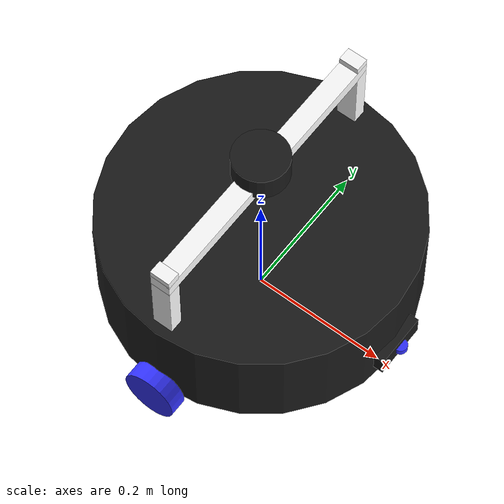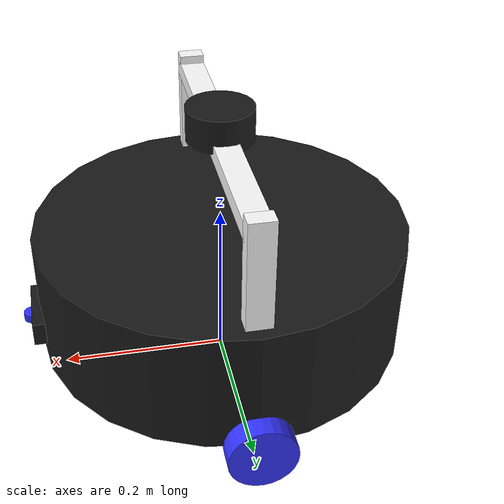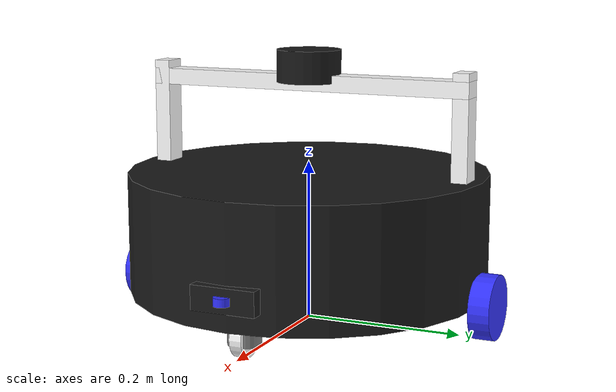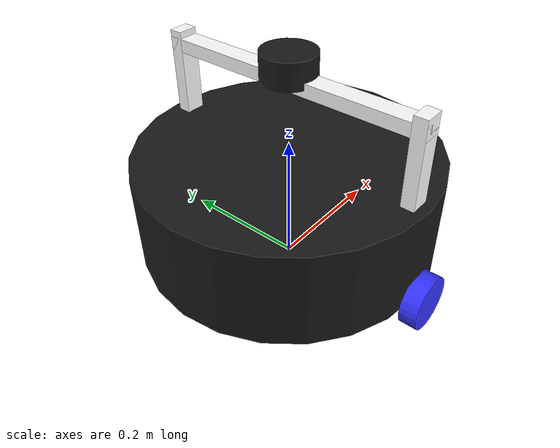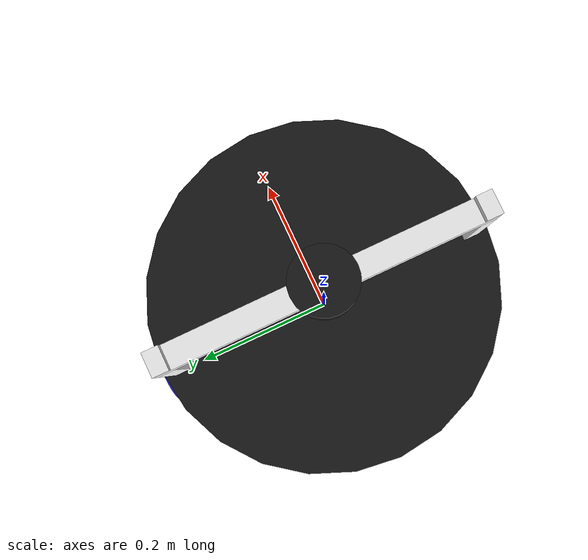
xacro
<?xml version="1.0"?>
<robot xmlns:xacro="http://www.ros.org/wiki/xacro"  name="robot">

    <xacro:arg name="use_ros2_control" default="true"/>
    <xacro:arg name="sim_mode" default="false"/>

    <xacro:include filename="robot_core.xacro" />

    <xacro:if value="$(arg use_ros2_control)">
        <xacro:include filename="ros2_control.xacro" />
    </xacro:if>
    <xacro:unless value="$(arg use_ros2_control)">
        <xacro:include filename="gazebo_control.xacro" />
    </xacro:unless>
    <xacro:include filename="lidar.xacro" />
    <xacro:include filename="camera.xacro" />

    </robot>

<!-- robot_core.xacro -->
<robot xmlns:xacro="http://www.ros.org/wiki/xacro" >

    <xacro:include filename="inertial_macros.xacro"/>

    <xacro:property name="chassis_radius" value="0.225"/>
    <xacro:property name="chassis_height" value="0.15"/> <xacro:property name="chassis_mass" value="2.0"/>

    <xacro:property name="wheel_radius" value="0.04"/> <xacro:property name="wheel_thickness" value="0.026"/>
    <xacro:property name="wheel_mass" value="0.2"/>

    <xacro:property name="wheel_offset_y" value="0.235"/>
    <xacro:property name="caster_wheel_radius" value="0.025"/>
    <xacro:property name="caster_wheel_mass" value="0.05"/>
    <xacro:property name="caster_offset_x" value="0.180"/>

    <material name="black"><color rgba="0.1 0.1 0.1 1"/></material>
    <material name="blue"><color rgba="0.2 0.2 1 1"/></material>
    <material name="white"><color rgba="1 1 1 1" /></material>
    <material name="grey"><color rgba="0.5 0.5 0.5 1"/></material>

    <link name="base_link"></link>

    <joint name="base_footprint_joint" type="fixed">
        <parent link="base_link"/>
        <child link="base_footprint"/>
        <origin xyz="0 0 0" rpy="0 0 0"/>
    </joint>
    <link name="base_footprint"></link>

    <joint name="chassis_joint" type="fixed">
        <parent link="base_link"/>
        <child link="chassis"/>
        <origin xyz="0 0 ${wheel_radius}"/>
    </joint>

    <link name="chassis">
        <visual>
            <origin xyz="0 0 ${chassis_height/2}"/>
            <geometry>
                <cylinder radius="${chassis_radius}" length="${chassis_height}"/>
            </geometry>
            <material name="black"/>
        </visual>
        <collision>
            <origin xyz="0 0 ${chassis_height/2}"/>
            <geometry>
                <cylinder radius="${chassis_radius}" length="${chassis_height}"/>
            </geometry>
        </collision>
        <xacro:inertial_cylinder mass="${chassis_mass}" length="${chassis_height}" radius="${chassis_radius}">
            <origin xyz="0 0 ${chassis_height/2}" rpy="0 0 0"/>
        </xacro:inertial_cylinder>
    </link>

    <gazebo reference="chassis">
        <material>Gazebo/Black</material>
    </gazebo>

    <joint name="left_wheel_joint" type="continuous">
        <parent link="base_link"/>
        <child link="left_wheel"/>
        <origin xyz="0 ${wheel_offset_y} ${wheel_radius}" rpy="-${pi/2} 0 0" />
        <axis xyz="0 0 1"/>
    </joint>

    <link name="left_wheel">
        <visual>
            <geometry><cylinder radius="${wheel_radius}" length="${wheel_thickness}"/></geometry>
            <material name="blue"/>
        </visual>
        <collision>
            <geometry><sphere radius="${wheel_radius}"/></geometry>
        </collision>
        <xacro:inertial_cylinder mass="${wheel_mass}" length="${wheel_thickness}" radius="${wheel_radius}">
            <origin xyz="0 0 0" rpy="0 0 0"/>
        </xacro:inertial_cylinder>
    </link>

    <gazebo reference="left_wheel">
        <material>Gazebo/Blue</material>
    </gazebo>

    <joint name="right_wheel_joint" type="continuous">
        <parent link="base_link"/>
        <child link="right_wheel"/>
        <origin xyz="0 ${-wheel_offset_y} ${wheel_radius}" rpy="${pi/2} 0 0" />
        <axis xyz="0 0 -1"/>
    </joint>

    <link name="right_wheel">
        <visual>
            <geometry><cylinder radius="${wheel_radius}" length="${wheel_thickness}"/></geometry>
            <material name="blue"/>
        </visual>
        <collision>
            <geometry><sphere radius="${wheel_radius}"/></geometry>
        </collision>
        <xacro:inertial_cylinder mass="${wheel_mass}" length="${wheel_thickness}" radius="${wheel_radius}">
            <origin xyz="0 0 0" rpy="0 0 0"/>
        </xacro:inertial_cylinder>
    </link>

    <gazebo reference="right_wheel">
        <material>Gazebo/Blue</material>
    </gazebo>

    <joint name="front_caster_wheel_joint" type="fixed">
        <parent link="chassis"/>
        <child link="front_caster_wheel"/>
        <origin xyz="${caster_offset_x} 0 ${caster_wheel_radius - wheel_radius}"/>
    </joint>

    <link name="front_caster_wheel">
        <visual>
            <origin xyz="0 0 0.01" rpy="0 0 0"/>
            <geometry>
                <cylinder radius="0.02" length="0.04"/>
            </geometry>
            <material name="grey"/>
        </visual>
        <visual>
            <origin xyz="0 0 0" rpy="${pi/2} 0 0"/>
            <geometry>
                <cylinder radius="${caster_wheel_radius}" length="0.015"/>
            </geometry>
            <material name="white"/>
        </visual>
        <collision>
            <geometry><sphere radius="${caster_wheel_radius}"/></geometry>
        </collision>
        <xacro:inertial_sphere mass="${caster_wheel_mass}" radius="${caster_wheel_radius}">
            <origin xyz="0 0 0" rpy="0 0 0"/>
        </xacro:inertial_sphere>
    </link>

    <joint name="rear_caster_wheel_joint" type="fixed">
        <parent link="chassis"/>
        <child link="rear_caster_wheel"/>
        <origin xyz="${-caster_offset_x} 0 ${caster_wheel_radius - wheel_radius}"/>
    </joint>

    <link name="rear_caster_wheel">
        <visual>
            <origin xyz="0 0 0.01" rpy="0 0 0"/>
            <geometry>
                <cylinder radius="0.02" length="0.04"/>
            </geometry>
            <material name="grey"/>
        </visual>
        <visual>
            <origin xyz="0 0 0" rpy="${pi/2} 0 0"/>
            <geometry>
                <cylinder radius="${caster_wheel_radius}" length="0.015"/>
            </geometry>
            <material name="white"/>
        </visual>
        <collision>
            <geometry><sphere radius="${caster_wheel_radius}"/></geometry>
        </collision>
        <xacro:inertial_sphere mass="${caster_wheel_mass}" radius="${caster_wheel_radius}">
            <origin xyz="0 0 0" rpy="0 0 0"/>
        </xacro:inertial_sphere>
    </link>

    <gazebo reference="front_caster_wheel">
        <material>Gazebo/White</material>
        <mu1 value="0.001"/><mu2 value="0.001"/>
    </gazebo>
    <gazebo reference="rear_caster_wheel">
        <material>Gazebo/White</material>
        <mu1 value="0.001"/><mu2 value="0.001"/>
    </gazebo>

</robot>

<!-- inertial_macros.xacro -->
<robot xmlns:xacro="http://www.ros.org/wiki/xacro">

  <!-- Inertial macros                                            -->

  <!-- ================== SPHERE ================== -->
  <xacro:macro name="inertial_sphere" params="mass radius *origin">
    <inertial>
      <xacro:insert_block name="origin"/>
      <mass value="${mass}"/>
      <inertia
        ixx="${(2.0/5.0) * mass * radius * radius}"
        ixy="0.0"
        ixz="0.0"
        iyy="${(2.0/5.0) * mass * radius * radius}"
        iyz="0.0"
        izz="${(2.0/5.0) * mass * radius * radius}"/>
    </inertial>
  </xacro:macro>

  <!-- ================== BOX ================== -->
  <xacro:macro name="inertial_box" params="mass x y z *origin">
    <inertial>
      <xacro:insert_block name="origin"/>
      <mass value="${mass}"/>
      <inertia
        ixx="${(1.0/12.0) * mass * (y*y + z*z)}"
        ixy="0.0"
        ixz="0.0"
        iyy="${(1.0/12.0) * mass * (x*x + z*z)}"
        iyz="0.0"
        izz="${(1.0/12.0) * mass * (x*x + y*y)}"/>
    </inertial>
  </xacro:macro>

  <!-- ================== CYLINDER ================== -->
  <xacro:macro name="inertial_cylinder" params="mass length radius *origin">
    <inertial>
      <xacro:insert_block name="origin"/>
      <mass value="${mass}"/>
      <inertia
        ixx="${(1.0/12.0) * mass * (3*radius*radius + length*length)}"
        ixy="0.0"
        ixz="0.0"
        iyy="${(1.0/12.0) * mass * (3*radius*radius + length*length)}"
        iyz="0.0"
        izz="${(1.0/2.0) * mass * radius * radius}"/>
    </inertial>
  </xacro:macro>

</robot>

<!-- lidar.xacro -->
<robot xmlns:xacro="http://www.ros.org/wiki/xacro" >

    <joint name="laser_joint" type="fixed">
        <parent link="chassis"/>
        <child link="laser_frame"/>
        <origin xyz="0 0 0.28" rpy="0 0 0"/>
    </joint>

    <link name="laser_frame">
        <visual>
            <geometry>
                <cylinder radius="0.04" length="0.04"/>
            </geometry>
            <material name="black"/>
        </visual>
        <collision>
            <geometry>
                <cylinder radius="0.04" length="0.04"/>
            </geometry>
        </collision>
        <xacro:inertial_cylinder mass="0.1" length="0.04" radius="0.04">
            <origin xyz="0 0 0" rpy="0 0 0"/>
        </xacro:inertial_cylinder>

        <visual>
            <origin xyz="0 0.20 -0.14" rpy="0 0 0"/>
            <geometry>
                <box size="0.03 0.02 0.28"/>
            </geometry>
            <material name="white"/>
        </visual>

        <visual>
            <origin xyz="0 -0.20 -0.14" rpy="0 0 0"/>
            <geometry>
                <box size="0.03 0.02 0.28"/>
            </geometry>
            <material name="white"/>
        </visual>

        <visual>
            <origin xyz="0 0 -0.02" rpy="0 0 0"/>
            <geometry>
                <box size="0.03 0.42 0.02"/>
            </geometry>
            <material name="white"/>
        </visual>
    </link>

    <gazebo reference="laser_frame">
        <material>Gazebo/Black</material>

        <sensor name="laser" type="ray">
            <pose> 0 0 0 0 0 0 </pose>
            <visualize>false</visualize>
            <update_rate>10</update_rate>
            <ray>
                <scan>
                    <horizontal>
                        <samples>360</samples>
                        <min_angle>-3.14</min_angle>
                        <max_angle>3.14</max_angle>
                    </horizontal>
                </scan>
                <range>
                    <min>0.3</min>
                    <max>12</max>
                </range>
            </ray>
            <plugin name="laser_controller" filename="libgazebo_ros_ray_sensor.so">
                <ros>
                    <argument>~/out:=scan</argument>
                </ros>
                <output_type>sensor_msgs/LaserScan</output_type>
                <frame_name>laser_frame</frame_name>
            </plugin>
        </sensor>
    </gazebo>

</robot>

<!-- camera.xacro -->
<robot xmlns:xacro="http://www.ros.org/wiki/xacro" >

    <joint name="camera_joint" type="fixed">
        <parent link="chassis"/>
        <child link="camera_link"/>
        <origin xyz="0.225 0 0.04" rpy="0 0 0"/>
    </joint>

    <link name="camera_link">
        <visual>
            <geometry>
                <box size="0.02 0.08 0.03"/> </geometry>
            <material name="black"/>
        </visual>
        <visual>
            <origin xyz="0.01 0 0"/> <geometry>
                <cylinder radius="0.01" length="0.01"/>
            </geometry>
            <material name="blue"/>
        </visual>
    </link>

    <joint name="camera_optical_joint" type="fixed">
        <parent link="camera_link"/>
        <child link="camera_link_optical"/>
        <origin xyz="0 0 0" rpy="${-pi/2} 0 ${-pi/2}"/>
    </joint>

    <link name="camera_link_optical"></link>

    <gazebo reference="camera_link">
        <material>Gazebo/Black</material>
        <sensor name="camera" type="camera">
            <pose> 0 0 0 0 0 0 </pose>
            <visualize>true</visualize>
            <update_rate>10</update_rate>
            <camera>
                <horizontal_fov>1.089</horizontal_fov>
                <image>
                    <format>R8G8B8</format>
                    <width>640</width>
                    <height>480</height>
                </image>
                <clip>
                    <near>0.05</near>
                    <far>8.0</far>
                </clip>
            </camera>
            <plugin name="camera_controller" filename="libgazebo_ros_camera.so">
                <frame_name>camera_link_optical</frame_name>
            </plugin>
        </sensor>
    </gazebo>
</robot>
